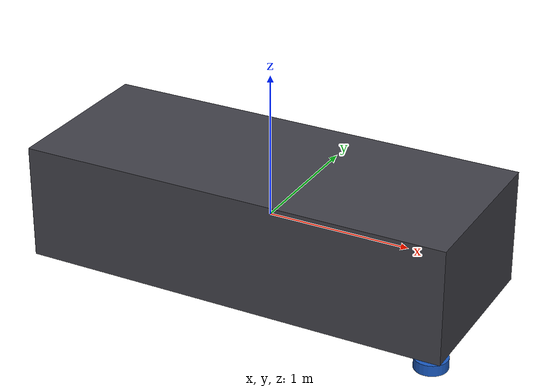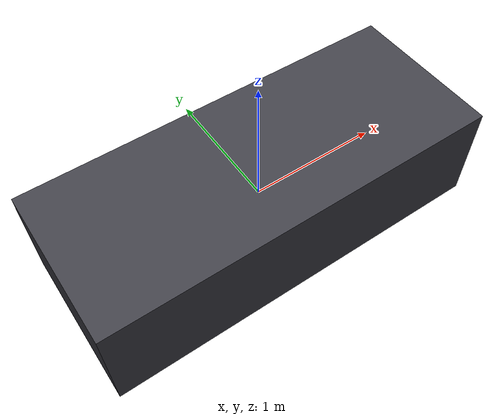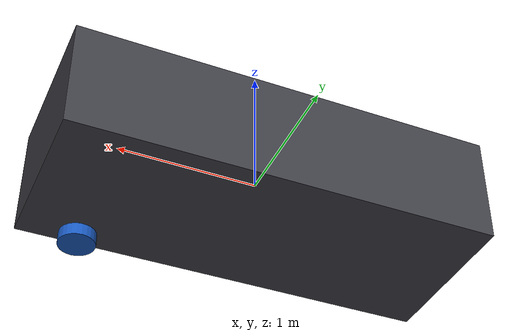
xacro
<?xml version="1.0"?>
<robot name="c3_ship_with_sonar" xmlns:xacro="http://www.ros.org/wiki/xacro">
  <xacro:arg name="parent_link" default="ship_base_link"/>
  <xacro:arg name="sonar_mount_xyz" default="1.2 0.0 -0.8"/>
  <xacro:arg name="sonar_mount_rpy" default="0 0 0"/>
  <xacro:arg name="enable_dave_plugin" default="false"/>
  <xacro:arg name="dave_pointcloud_topic" default="/multibeam_sonar_point_cloud"/>
  <xacro:arg name="dave_image_topic" default="/sonar_image"/>
  <xacro:arg name="dave_image_raw_topic" default="/sonar_image_raw"/>
  <xacro:arg name="dave_max_distance" default="30.0"/>

  <link name="ship_base_link">
    <inertial>
      <origin xyz="0 0 0" rpy="0 0 0"/>
      <mass value="80.0"/>
      <inertia ixx="10.0" ixy="0.0" ixz="0.0" iyy="10.0" iyz="0.0" izz="15.0"/>
    </inertial>
    <visual>
      <origin xyz="0 0 0" rpy="0 0 0"/>
      <geometry>
        <box size="3.0 1.2 0.8"/>
      </geometry>
      <material name="ship_gray">
        <color rgba="0.25 0.25 0.28 1.0"/>
      </material>
    </visual>
  </link>

  <joint name="sonar_mount_joint" type="fixed">
    <parent link="$(arg parent_link)"/>
    <child link="sonar_link"/>
    <origin xyz="$(arg sonar_mount_xyz)" rpy="$(arg sonar_mount_rpy)"/>
  </joint>

  <link name="sonar_link">
    <inertial>
      <origin xyz="0 0 0" rpy="0 0 0"/>
      <mass value="2.0"/>
      <inertia ixx="0.05" ixy="0.0" ixz="0.0" iyy="0.05" iyz="0.0" izz="0.05"/>
    </inertial>
    <visual>
      <origin xyz="0 0 0" rpy="0 0 0"/>
      <geometry>
        <cylinder radius="0.12" length="0.08"/>
      </geometry>
      <material name="sonar_blue">
        <color rgba="0.1 0.35 0.75 1.0"/>
      </material>
    </visual>
  </link>

  <joint name="sonar_optical_joint" type="fixed">
    <parent link="sonar_link"/>
    <child link="sonar_optical_frame"/>
    <origin xyz="0 0 0" rpy="-1.57079632679 0 -1.57079632679"/>
  </joint>
  <link name="sonar_optical_frame"/>

  <!-- DAVE multibeam sonar plugin template (Gazebo Classic). -->
  <xacro:if value="$(arg enable_dave_plugin)">
    <gazebo reference="sonar_link">
      <sensor type="ray" name="c3_multibeam_ray">
        <always_on>true</always_on>
        <visualize>false</visualize>
        <update_rate>10</update_rate>
        <ray>
          <scan>
            <horizontal>
              <samples>512</samples>
              <resolution>1</resolution>
              <min_angle>-1.57</min_angle>
              <max_angle>1.57</max_angle>
            </horizontal>
            <vertical>
              <samples>8</samples>
              <resolution>1</resolution>
              <min_angle>-0.12</min_angle>
              <max_angle>0.12</max_angle>
            </vertical>
          </scan>
          <range>
            <min>0.5</min>
            <max>$(arg dave_max_distance)</max>
            <resolution>0.01</resolution>
          </range>
        </ray>

        <!-- Topic bridge from GPU ray to point cloud -->
        <plugin name="ray_sonar_sensor" filename="libgazebo_ros_velodyne_gpu_laser.so">
          <topicName>$(arg dave_pointcloud_topic)</topicName>
          <frameName>sonar_optical_frame</frameName>
        </plugin>

        <!-- DAVE sonar image/intensity model plugin -->
        <plugin name="sonar_controller" filename="libnps_multibeam_sonar_ray_ros_plugin.so">
          <pointCloudTopicName>$(arg dave_pointcloud_topic)</pointCloudTopicName>
          <sonarImageRawTopicName>$(arg dave_image_raw_topic)</sonarImageRawTopicName>
          <sonarImageTopicName>$(arg dave_image_topic)</sonarImageTopicName>
          <frameName>sonar_optical_frame</frameName>
          <maxDistance>$(arg dave_max_distance)</maxDistance>
          <sensorGain>0.02</sensorGain>
          <raySkips>4</raySkips>
          <debugFlag>0</debugFlag>
        </plugin>
      </sensor>
    </gazebo>
  </xacro:if>
</robot>
